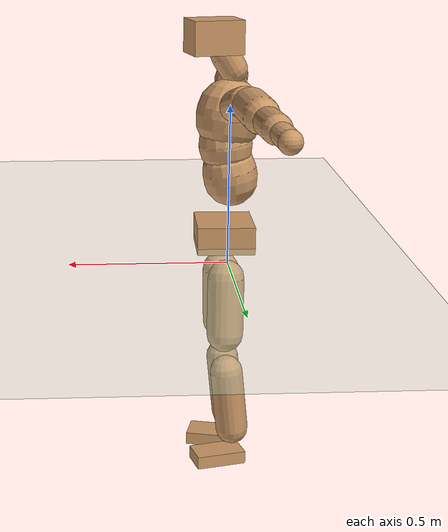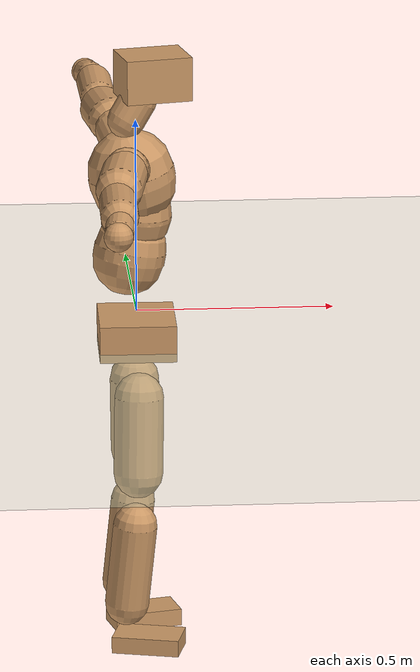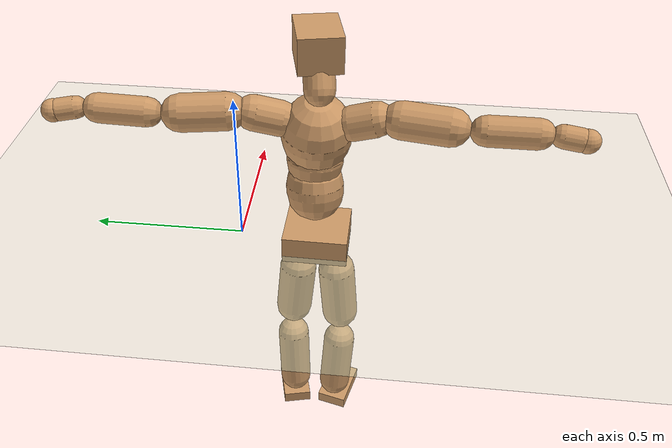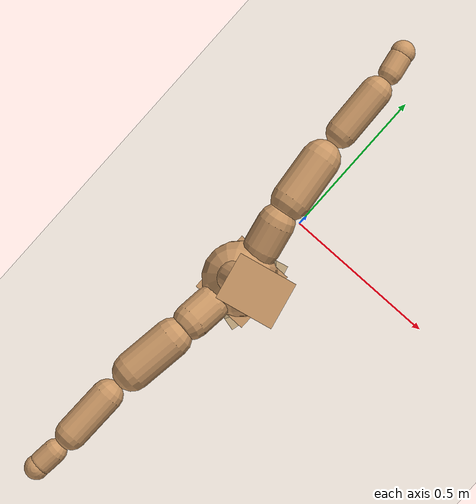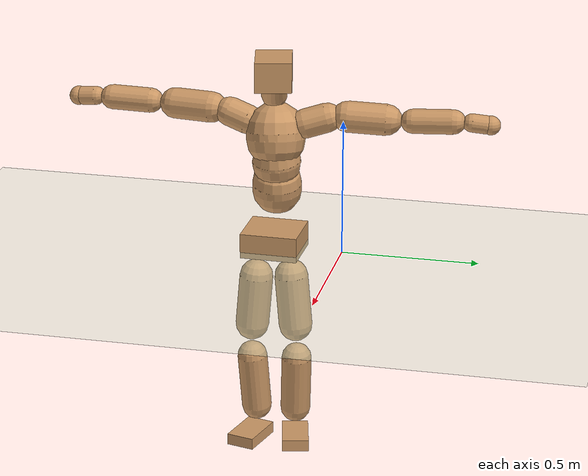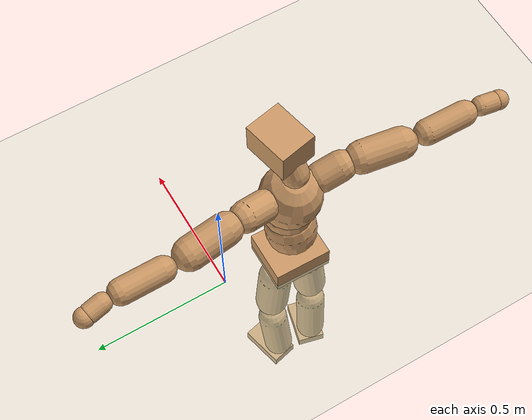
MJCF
<mujoco model="humanoid">
  <compiler coordinate="local" angle="radian"/>
  <default>
    <joint damping="0.0" armature="0.01" stiffness="0.0" limited="true"/>
    <geom conaffinity="1" condim="3" contype="7" margin="0.001" rgba="0.8 0.6 .4 1"/>
  </default>
  <asset>
    <texture type="skybox" builtin="gradient" rgb1=".4 .5 .6" rgb2="0 0 0" width="100" height="100"/>
    <texture builtin="flat" height="1278" mark="cross" markrgb="1 1 1" name="texgeom" random="0.01" rgb1="0.8 0.6 0.4" rgb2="0.8 0.6 0.4" type="cube" width="127"/>
    <texture builtin="checker" height="100" name="texplane" rgb1="0 0 0" rgb2="0.8 0.8 0.8" type="2d" width="100"/>
    <material name="MatPlane" reflectance="0.5" shininess="1" specular="1" texrepeat="60 60" texture="texplane"/>
    <material name="geom" texture="texgeom" texuniform="true"/>
  </asset>
  <worldbody>
    <light cutoff="100" diffuse="1 1 1" dir="-0 0 -1.3" directional="true" exponent="1" pos="0 0 1.3" specular=".1 .1 .1"/>
    <geom conaffinity="1" condim="3" name="floor" pos="0 0 0" rgba="0.8 0.9 0.8 1" size="100 100 .2" type="plane" material="MatPlane"/>
    <body name="Pelvis" pos="-0.0043 -0.2565 0.0301">
      <freejoint name="Pelvis"/>
      <geom type="box" contype="1" conaffinity="1" density="500" pos="-0.0102 0.0002 -0.0078" size="0.0951 0.105 0.0461" quat="1.0000 0.0000 0.0000 -0.0074" name="Pelvis"/>
      <body name="L_Hip" pos="-0.0139 0.058 -0.0815">
        <joint name="L_Hip_x" type="hinge" pos="0 0 0" axis="1 0 0" stiffness="800" damping="80" armature="0.02" range="-180.0000 180.0000"/>
        <joint name="L_Hip_y" type="hinge" pos="0 0 0" axis="0 1 0" stiffness="800" damping="80" armature="0.02" range="-180.0000 180.0000"/>
        <joint name="L_Hip_z" type="hinge" pos="0 0 0" axis="0 0 1" stiffness="800" damping="80" armature="0.02" range="-180.0000 180.0000"/>
        <geom type="capsule" contype="1" conaffinity="1" density="500" fromto="0.0010 0.0057 -0.0642 0.0038 0.0228 -0.2569" size="0.0615" name="L_Hip"/>
        <body name="L_Knee" pos="0.0048 0.0285 -0.3211">
          <joint name="L_Knee_x" type="hinge" pos="0 0 0" axis="1 0 0" stiffness="800" damping="80" armature="0.02" range="-180.0000 180.0000"/>
          <joint name="L_Knee_y" type="hinge" pos="0 0 0" axis="0 1 0" stiffness="800" damping="80" armature="0.02" range="-180.0000 180.0000"/>
          <joint name="L_Knee_z" type="hinge" pos="0 0 0" axis="0 0 1" stiffness="800" damping="80" armature="0.02" range="-180.0000 180.0000"/>
          <geom type="capsule" contype="1" conaffinity="1" density="500" fromto="-0.0078 -0.0032 -0.0716 -0.0313 -0.0127 -0.2863" size="0.0552" name="L_Knee"/>
          <body name="L_Ankle" pos="-0.0391 -0.0159 -0.3578">
            <joint name="L_Ankle_x" type="hinge" pos="0 0 0" axis="1 0 0" stiffness="800" damping="80" armature="0.02" range="-180.0000 180.0000"/>
            <joint name="L_Ankle_y" type="hinge" pos="0 0 0" axis="0 1 0" stiffness="800" damping="80" armature="0.02" range="-180.0000 180.0000"/>
            <joint name="L_Ankle_z" type="hinge" pos="0 0 0" axis="0 0 1" stiffness="800" damping="80" armature="0.02" range="-180.0000 180.0000"/>
            <geom type="box" contype="1" conaffinity="1" density="500" pos="0.0575 0.0137 -0.0262" size="0.0852 0.0488 0.0216" quat="0.9931 0.0000 0.0000 0.1170" name="L_Ankle"/>
            <body name="L_Toe" pos="0.115 0.0275 -0.0523">
              <joint name="L_Toe_x" type="hinge" pos="0 0 0" axis="1 0 0" stiffness="500" damping="50" armature="0.02" range="-180.0000 180.0000"/>
              <joint name="L_Toe_y" type="hinge" pos="0 0 0" axis="0 1 0" stiffness="500" damping="50" armature="0.02" range="-180.0000 180.0000"/>
              <joint name="L_Toe_z" type="hinge" pos="0 0 0" axis="0 0 1" stiffness="500" damping="50" armature="0.02" range="-180.0000 180.0000"/>
              <geom type="box" contype="1" conaffinity="1" density="500" pos="0.0000 0.0000 0.0258" size="0.0011 0.0025 0.0011" quat="0.9924 0.0000 0.0000 0.1231" name="L_Toe"/>
            </body>
          </body>
        </body>
      </body>
      <body name="R_Hip" pos="-0.0072 -0.0613 -0.0906">
        <joint name="R_Hip_x" type="hinge" pos="0 0 0" axis="1 0 0" stiffness="800" damping="80" armature="0.02" range="-180.0000 180.0000"/>
        <joint name="R_Hip_y" type="hinge" pos="0 0 0" axis="0 1 0" stiffness="800" damping="80" armature="0.02" range="-180.0000 180.0000"/>
        <joint name="R_Hip_z" type="hinge" pos="0 0 0" axis="0 0 1" stiffness="800" damping="80" armature="0.02" range="-180.0000 180.0000"/>
        <geom type="capsule" contype="1" conaffinity="1" density="500" fromto="-0.0013 -0.0058 -0.0646 -0.0052 -0.0231 -0.2585" size="0.0615" name="R_Hip"/>
        <body name="R_Knee" pos="-0.0064 -0.0289 -0.3231">
          <joint name="R_Knee_x" type="hinge" pos="0 0 0" axis="1 0 0" stiffness="800" damping="80" armature="0.02" range="-180.0000 180.0000"/>
          <joint name="R_Knee_y" type="hinge" pos="0 0 0" axis="0 1 0" stiffness="800" damping="80" armature="0.02" range="-180.0000 180.0000"/>
          <joint name="R_Knee_z" type="hinge" pos="0 0 0" axis="0 0 1" stiffness="800" damping="80" armature="0.02" range="-180.0000 180.0000"/>
          <geom type="capsule" contype="1" conaffinity="1" density="500" fromto="-0.0071 0.0037 -0.0704 -0.0285 0.0147 -0.2815" size="0.0552" name="R_Knee"/>
          <body name="R_Ankle" pos="-0.0357 0.0183 -0.3519">
            <joint name="R_Ankle_x" type="hinge" pos="0 0 0" axis="1 0 0" stiffness="800" damping="80" armature="0.02" range="-180.0000 180.0000"/>
            <joint name="R_Ankle_y" type="hinge" pos="0 0 0" axis="0 1 0" stiffness="800" damping="80" armature="0.02" range="-180.0000 180.0000"/>
            <joint name="R_Ankle_z" type="hinge" pos="0 0 0" axis="0 0 1" stiffness="800" damping="80" armature="0.02" range="-180.0000 180.0000"/>
            <geom type="box" contype="1" conaffinity="1" density="500" pos="0.0612 -0.0155 -0.0266" size="0.0848 0.052 0.0211" quat="0.9923 0.0000 0.0000 -0.1235" name="R_Ankle"/>
            <body name="R_Toe" pos="0.1224 -0.0309 -0.0533">
              <joint name="R_Toe_x" type="hinge" pos="0 0 0" axis="1 0 0" stiffness="500" damping="50" armature="0.02" range="-180.0000 180.0000"/>
              <joint name="R_Toe_y" type="hinge" pos="0 0 0" axis="0 1 0" stiffness="500" damping="50" armature="0.02" range="-180.0000 180.0000"/>
              <joint name="R_Toe_z" type="hinge" pos="0 0 0" axis="0 0 1" stiffness="500" damping="50" armature="0.02" range="-180.0000 180.0000"/>
              <geom type="box" contype="1" conaffinity="1" density="500" pos="0.0000 0.0000 0.0276" size="0.0012 0.0026 0.0011" quat="0.9935 0.0000 0.0000 -0.1141" name="R_Toe"/>
            </body>
          </body>
        </body>
      </body>
      <body name="Torso" pos="-0.04 0.0042 0.1255">
        <joint name="Torso_x" type="hinge" pos="0 0 0" axis="1 0 0" stiffness="1000" damping="100" armature="0.02" range="-180.0000 180.0000"/>
        <joint name="Torso_y" type="hinge" pos="0 0 0" axis="0 1 0" stiffness="1000" damping="100" armature="0.02" range="-180.0000 180.0000"/>
        <joint name="Torso_z" type="hinge" pos="0 0 0" axis="0 0 1" stiffness="1000" damping="100" armature="0.02" range="-180.0000 180.0000"/>
        <geom type="capsule" contype="1" conaffinity="1" density="500" fromto="0.0161 0.0036 0.0851 0.0107 0.0024 0.0567" size="0.09" name="Torso"/>
        <body name="Spine" pos="0.0268 0.0061 0.1418">
          <joint name="Spine_x" type="hinge" pos="0 0 0" axis="1 0 0" stiffness="1000" damping="100" armature="0.02" range="-180.0000 180.0000"/>
          <joint name="Spine_y" type="hinge" pos="0 0 0" axis="0 1 0" stiffness="1000" damping="100" armature="0.02" range="-180.0000 180.0000"/>
          <joint name="Spine_z" type="hinge" pos="0 0 0" axis="0 0 1" stiffness="1000" damping="100" armature="0.02" range="-180.0000 180.0000"/>
          <geom type="capsule" contype="1" conaffinity="1" density="500" fromto="0.0041 -0.0010 0.0342 0.0028 -0.0007 0.0228" size="0.0882" name="Spine"/>
          <body name="Chest" pos="0.0069 -0.0017 0.057">
            <joint name="Chest_x" type="hinge" pos="0 0 0" axis="1 0 0" stiffness="1000" damping="100" armature="0.02" range="-180.0000 180.0000"/>
            <joint name="Chest_y" type="hinge" pos="0 0 0" axis="0 1 0" stiffness="1000" damping="100" armature="0.02" range="-180.0000 180.0000"/>
            <joint name="Chest_z" type="hinge" pos="0 0 0" axis="0 0 1" stiffness="1000" damping="100" armature="0.02" range="-180.0000 180.0000"/>
            <geom type="capsule" contype="1" conaffinity="1" density="500" fromto="-0.0162 -0.0051 0.0833 -0.0108 -0.0034 0.0556" size="0.1072" name="Chest"/>
            <body name="Neck" pos="-0.0367 -0.0144 0.2008">
              <joint name="Neck_x" type="hinge" pos="0 0 0" axis="1 0 0" stiffness="500" damping="50" armature="0.02" range="-180.0000 180.0000"/>
              <joint name="Neck_y" type="hinge" pos="0 0 0" axis="0 1 0" stiffness="500" damping="50" armature="0.02" range="-180.0000 180.0000"/>
              <joint name="Neck_z" type="hinge" pos="0 0 0" axis="0 0 1" stiffness="500" damping="50" armature="0.02" range="-180.0000 180.0000"/>
              <geom type="capsule" contype="1" conaffinity="1" density="500" fromto="0.0100 0.0018 0.0165 0.0399 0.0073 0.0660" size="0.0471" name="Neck"/>
              <body name="Head" pos="0.0499 0.0091 0.0825">
                <joint name="Head_x" type="hinge" pos="0 0 0" axis="1 0 0" stiffness="500" damping="50" armature="0.02" range="-180.0000 180.0000"/>
                <joint name="Head_y" type="hinge" pos="0 0 0" axis="0 1 0" stiffness="500" damping="50" armature="0.02" range="-180.0000 180.0000"/>
                <joint name="Head_z" type="hinge" pos="0 0 0" axis="0 0 1" stiffness="500" damping="50" armature="0.02" range="-180.0000 180.0000"/>
                <geom type="box" contype="1" conaffinity="1" density="500" pos="0.0260 0.0055 0.0422" size="0.0825 0.066 0.055" quat="0.9945 0.0000 0.0000 0.1050" name="Head"/>
              </body>
            </body>
            <body name="L_Thorax" pos="-0.0198 0.0744 0.1087">
              <joint name="L_Thorax_x" type="hinge" pos="0 0 0" axis="1 0 0" stiffness="500" damping="50" armature="0.02" range="-180.0000 180.0000"/>
              <joint name="L_Thorax_y" type="hinge" pos="0 0 0" axis="0 1 0" stiffness="500" damping="50" armature="0.02" range="-180.0000 180.0000"/>
              <joint name="L_Thorax_z" type="hinge" pos="0 0 0" axis="0 0 1" stiffness="500" damping="50" armature="0.02" range="-180.0000 180.0000"/>
              <geom type="capsule" contype="1" conaffinity="1" density="500" fromto="-0.0053 0.0261 0.0079 -0.0212 0.1044 0.0316" size="0.0538" name="L_Thorax"/>
              <body name="L_Shoulder" pos="-0.0265 0.1305 0.0395">
                <joint name="L_Shoulder_x" type="hinge" pos="0 0 0" axis="1 0 0" stiffness="500" damping="50" armature="0.02" range="-720.0000 720.0000"/>
                <joint name="L_Shoulder_y" type="hinge" pos="0 0 0" axis="0 1 0" stiffness="500" damping="50" armature="0.02" range="-720.0000 720.0000"/>
                <joint name="L_Shoulder_z" type="hinge" pos="0 0 0" axis="0 0 1" stiffness="500" damping="50" armature="0.02" range="-720.0000 720.0000"/>
                <geom type="capsule" contype="1" conaffinity="1" density="500" fromto="-0.0047 0.0464 -0.0021 -0.0188 0.1855 -0.0083" size="0.057" name="L_Shoulder"/>
                <body name="L_Elbow" pos="-0.0235 0.2319 -0.0104">
                  <joint name="L_Elbow_x" type="hinge" pos="0 0 0" axis="1 0 0" stiffness="500" damping="50" armature="0.02" range="-720.0000 720.0000"/>
                  <joint name="L_Elbow_y" type="hinge" pos="0 0 0" axis="0 1 0" stiffness="500" damping="50" armature="0.02" range="-720.0000 720.0000"/>
                  <joint name="L_Elbow_z" type="hinge" pos="0 0 0" axis="0 0 1" stiffness="500" damping="50" armature="0.02" range="-720.0000 720.0000"/>
                  <geom type="capsule" contype="1" conaffinity="1" density="500" fromto="-0.0013 0.0487 0.0023 -0.0052 0.1946 0.0091" size="0.0446" name="L_Elbow"/>
                  <body name="L_Wrist" pos="-0.0065 0.2433 0.0114">
                    <joint name="L_Wrist_x" type="hinge" pos="0 0 0" axis="1 0 0" stiffness="300" damping="30" armature="0.02" range="-180.0000 180.0000"/>
                    <joint name="L_Wrist_y" type="hinge" pos="0 0 0" axis="0 1 0" stiffness="300" damping="30" armature="0.02" range="-180.0000 180.0000"/>
                    <joint name="L_Wrist_z" type="hinge" pos="0 0 0" axis="0 0 1" stiffness="300" damping="30" armature="0.02" range="-180.0000 180.0000"/>
                    <geom type="capsule" contype="1" conaffinity="1" density="500" fromto="-0.0029 0.0167 -0.0021 -0.0117 0.0669 -0.0083" size="0.0338" name="L_Wrist"/>
                    <body name="L_Hand" pos="-0.0146 0.0836 -0.0104">
                      <joint name="L_Hand_x" type="hinge" pos="0 0 0" axis="1 0 0" stiffness="300" damping="30" armature="0.02" range="-180.0000 180.0000"/>
                      <joint name="L_Hand_y" type="hinge" pos="0 0 0" axis="0 1 0" stiffness="300" damping="30" armature="0.02" range="-180.0000 180.0000"/>
                      <joint name="L_Hand_z" type="hinge" pos="0 0 0" axis="0 0 1" stiffness="300" damping="30" armature="0.02" range="-180.0000 180.0000"/>
                      <geom type="sphere" contype="1" conaffinity="1" density="500" size="0.0347" pos="0.0000 0.0000 0.0000" name="L_Hand"/>
                    </body>
                  </body>
                </body>
              </body>
            </body>
            <body name="R_Thorax" pos="-0.0246 -0.0856 0.1072">
              <joint name="R_Thorax_x" type="hinge" pos="0 0 0" axis="1 0 0" stiffness="500" damping="50" armature="0.02" range="-180.0000 180.0000"/>
              <joint name="R_Thorax_y" type="hinge" pos="0 0 0" axis="0 1 0" stiffness="500" damping="50" armature="0.02" range="-180.0000 180.0000"/>
              <joint name="R_Thorax_z" type="hinge" pos="0 0 0" axis="0 0 1" stiffness="500" damping="50" armature="0.02" range="-180.0000 180.0000"/>
              <geom type="capsule" contype="1" conaffinity="1" density="500" fromto="-0.0027 -0.0235 0.0079 -0.0110 -0.0939 0.0315" size="0.053" name="R_Thorax"/>
              <body name="R_Shoulder" pos="-0.0137 -0.1174 0.0394">
                <joint name="R_Shoulder_x" type="hinge" pos="0 0 0" axis="1 0 0" stiffness="500" damping="50" armature="0.02" range="-720.0000 720.0000"/>
                <joint name="R_Shoulder_y" type="hinge" pos="0 0 0" axis="0 1 0" stiffness="500" damping="50" armature="0.02" range="-720.0000 720.0000"/>
                <joint name="R_Shoulder_z" type="hinge" pos="0 0 0" axis="0 0 1" stiffness="500" damping="50" armature="0.02" range="-720.0000 720.0000"/>
                <geom type="capsule" contype="1" conaffinity="1" density="500" fromto="-0.0070 -0.0469 -0.0005 -0.0280 -0.1875 -0.0019" size="0.0565" name="R_Shoulder"/>
                <body name="R_Elbow" pos="-0.035 -0.2344 -0.0023">
                  <joint name="R_Elbow_x" type="hinge" pos="0 0 0" axis="1 0 0" stiffness="500" damping="50" armature="0.02" range="-720.0000 720.0000"/>
                  <joint name="R_Elbow_y" type="hinge" pos="0 0 0" axis="0 1 0" stiffness="500" damping="50" armature="0.02" range="-720.0000 720.0000"/>
                  <joint name="R_Elbow_z" type="hinge" pos="0 0 0" axis="0 0 1" stiffness="500" damping="50" armature="0.02" range="-720.0000 720.0000"/>
                  <geom type="capsule" contype="1" conaffinity="1" density="500" fromto="-0.0010 -0.0484 0.0006 -0.0041 -0.1934 0.0024" size="0.0452" name="R_Elbow"/>
                  <body name="R_Wrist" pos="-0.0052 -0.2418 0.003">
                    <joint name="R_Wrist_x" type="hinge" pos="0 0 0" axis="1 0 0" stiffness="300" damping="30" armature="0.02" range="-180.0000 180.0000"/>
                    <joint name="R_Wrist_y" type="hinge" pos="0 0 0" axis="0 1 0" stiffness="300" damping="30" armature="0.02" range="-180.0000 180.0000"/>
                    <joint name="R_Wrist_z" type="hinge" pos="0 0 0" axis="0 0 1" stiffness="300" damping="30" armature="0.02" range="-180.0000 180.0000"/>
                    <geom type="capsule" contype="1" conaffinity="1" density="500" fromto="-0.0019 -0.0170 -0.0017 -0.0074 -0.0680 -0.0069" size="0.0344" name="R_Wrist"/>
                    <body name="R_Hand" pos="-0.0093 -0.085 -0.0086">
                      <joint name="R_Hand_x" type="hinge" pos="0 0 0" axis="1 0 0" stiffness="300" damping="30" armature="0.02" range="-180.0000 180.0000"/>
                      <joint name="R_Hand_y" type="hinge" pos="0 0 0" axis="0 1 0" stiffness="300" damping="30" armature="0.02" range="-180.0000 180.0000"/>
                      <joint name="R_Hand_z" type="hinge" pos="0 0 0" axis="0 0 1" stiffness="300" damping="30" armature="0.02" range="-180.0000 180.0000"/>
                      <geom type="sphere" contype="1" conaffinity="1" density="500" size="0.0349" pos="0.0000 0.0000 0.0000" name="R_Hand"/>
                    </body>
                  </body>
                </body>
              </body>
            </body>
          </body>
        </body>
      </body>
    </body>
  </worldbody>
  <actuator>
    <motor name="L_Hip_x" joint="L_Hip_x" gear="500"/>
    <motor name="L_Hip_y" joint="L_Hip_y" gear="500"/>
    <motor name="L_Hip_z" joint="L_Hip_z" gear="500"/>
    <motor name="L_Knee_x" joint="L_Knee_x" gear="500"/>
    <motor name="L_Knee_y" joint="L_Knee_y" gear="500"/>
    <motor name="L_Knee_z" joint="L_Knee_z" gear="500"/>
    <motor name="L_Ankle_x" joint="L_Ankle_x" gear="500"/>
    <motor name="L_Ankle_y" joint="L_Ankle_y" gear="500"/>
    <motor name="L_Ankle_z" joint="L_Ankle_z" gear="500"/>
    <motor name="L_Toe_x" joint="L_Toe_x" gear="500"/>
    <motor name="L_Toe_y" joint="L_Toe_y" gear="500"/>
    <motor name="L_Toe_z" joint="L_Toe_z" gear="500"/>
    <motor name="R_Hip_x" joint="R_Hip_x" gear="500"/>
    <motor name="R_Hip_y" joint="R_Hip_y" gear="500"/>
    <motor name="R_Hip_z" joint="R_Hip_z" gear="500"/>
    <motor name="R_Knee_x" joint="R_Knee_x" gear="500"/>
    <motor name="R_Knee_y" joint="R_Knee_y" gear="500"/>
    <motor name="R_Knee_z" joint="R_Knee_z" gear="500"/>
    <motor name="R_Ankle_x" joint="R_Ankle_x" gear="500"/>
    <motor name="R_Ankle_y" joint="R_Ankle_y" gear="500"/>
    <motor name="R_Ankle_z" joint="R_Ankle_z" gear="500"/>
    <motor name="R_Toe_x" joint="R_Toe_x" gear="500"/>
    <motor name="R_Toe_y" joint="R_Toe_y" gear="500"/>
    <motor name="R_Toe_z" joint="R_Toe_z" gear="500"/>
    <motor name="Torso_x" joint="Torso_x" gear="500"/>
    <motor name="Torso_y" joint="Torso_y" gear="500"/>
    <motor name="Torso_z" joint="Torso_z" gear="500"/>
    <motor name="Spine_x" joint="Spine_x" gear="500"/>
    <motor name="Spine_y" joint="Spine_y" gear="500"/>
    <motor name="Spine_z" joint="Spine_z" gear="500"/>
    <motor name="Chest_x" joint="Chest_x" gear="500"/>
    <motor name="Chest_y" joint="Chest_y" gear="500"/>
    <motor name="Chest_z" joint="Chest_z" gear="500"/>
    <motor name="Neck_x" joint="Neck_x" gear="500"/>
    <motor name="Neck_y" joint="Neck_y" gear="500"/>
    <motor name="Neck_z" joint="Neck_z" gear="500"/>
    <motor name="Head_x" joint="Head_x" gear="500"/>
    <motor name="Head_y" joint="Head_y" gear="500"/>
    <motor name="Head_z" joint="Head_z" gear="500"/>
    <motor name="L_Thorax_x" joint="L_Thorax_x" gear="500"/>
    <motor name="L_Thorax_y" joint="L_Thorax_y" gear="500"/>
    <motor name="L_Thorax_z" joint="L_Thorax_z" gear="500"/>
    <motor name="L_Shoulder_x" joint="L_Shoulder_x" gear="500"/>
    <motor name="L_Shoulder_y" joint="L_Shoulder_y" gear="500"/>
    <motor name="L_Shoulder_z" joint="L_Shoulder_z" gear="500"/>
    <motor name="L_Elbow_x" joint="L_Elbow_x" gear="500"/>
    <motor name="L_Elbow_y" joint="L_Elbow_y" gear="500"/>
    <motor name="L_Elbow_z" joint="L_Elbow_z" gear="500"/>
    <motor name="L_Wrist_x" joint="L_Wrist_x" gear="500"/>
    <motor name="L_Wrist_y" joint="L_Wrist_y" gear="500"/>
    <motor name="L_Wrist_z" joint="L_Wrist_z" gear="500"/>
    <motor name="L_Hand_x" joint="L_Hand_x" gear="500"/>
    <motor name="L_Hand_y" joint="L_Hand_y" gear="500"/>
    <motor name="L_Hand_z" joint="L_Hand_z" gear="500"/>
    <motor name="R_Thorax_x" joint="R_Thorax_x" gear="500"/>
    <motor name="R_Thorax_y" joint="R_Thorax_y" gear="500"/>
    <motor name="R_Thorax_z" joint="R_Thorax_z" gear="500"/>
    <motor name="R_Shoulder_x" joint="R_Shoulder_x" gear="500"/>
    <motor name="R_Shoulder_y" joint="R_Shoulder_y" gear="500"/>
    <motor name="R_Shoulder_z" joint="R_Shoulder_z" gear="500"/>
    <motor name="R_Elbow_x" joint="R_Elbow_x" gear="500"/>
    <motor name="R_Elbow_y" joint="R_Elbow_y" gear="500"/>
    <motor name="R_Elbow_z" joint="R_Elbow_z" gear="500"/>
    <motor name="R_Wrist_x" joint="R_Wrist_x" gear="500"/>
    <motor name="R_Wrist_y" joint="R_Wrist_y" gear="500"/>
    <motor name="R_Wrist_z" joint="R_Wrist_z" gear="500"/>
    <motor name="R_Hand_x" joint="R_Hand_x" gear="500"/>
    <motor name="R_Hand_y" joint="R_Hand_y" gear="500"/>
    <motor name="R_Hand_z" joint="R_Hand_z" gear="500"/>
  </actuator>
  <contact>
    <exclude body1="Torso" body2="Chest"/>
    <exclude body1="Head" body2="Chest"/>
    <exclude body1="R_Knee" body2="R_Toe"/>
    <exclude body1="R_Knee" body2="L_Ankle"/>
    <exclude body1="R_Knee" body2="L_Toe"/>
    <exclude body1="L_Knee" body2="L_Toe"/>
    <exclude body1="L_Knee" body2="R_Ankle"/>
    <exclude body1="L_Knee" body2="R_Toe"/>
    <exclude body1="L_Shoulder" body2="Chest"/>
    <exclude body1="R_Shoulder" body2="Chest"/>
  </contact>
  <sensor/>
  <size njmax="700" nconmax="700"/>
</mujoco>
